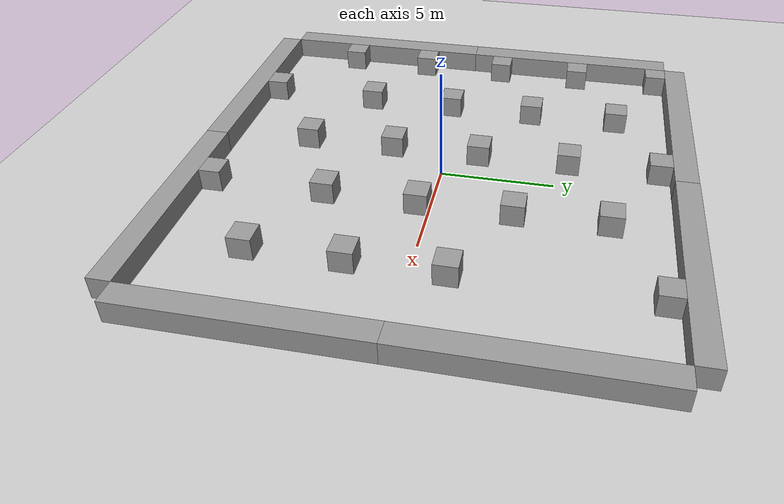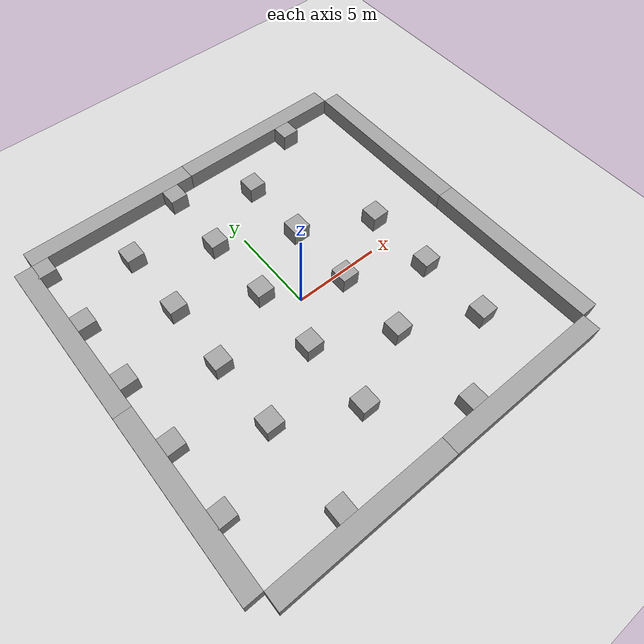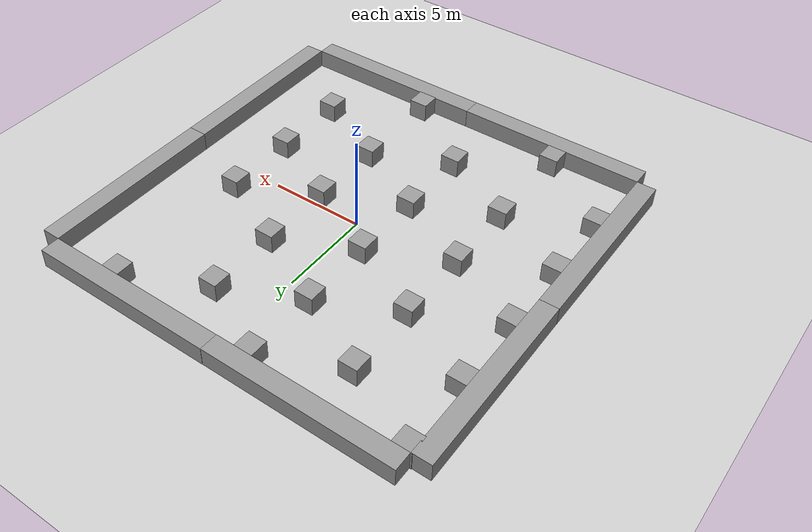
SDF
<sdf version="1.7">
 <world name="default">
  <light name="sun" type="directional">
   <pose>0 0 10 0 -0 0</pose>
   <diffuse>0.8 0.8 0.8 1</diffuse>
   <specular>0.2 0.2 0.2 1</specular>
   <attenuation>
    <range>1000</range>
    <constant>0.9</constant>
    <linear>0.01</linear>
    <quadratic>0.001</quadratic>
   </attenuation>
   <direction>-0.5 0.1 -0.9</direction>
   <spot><inner_angle>0</inner_angle><outer_angle>0</outer_angle><falloff>0</falloff></spot>
  </light>
  <model name="ground_plane">
   <static>1</static>
   <link name="link">
    <collision name="collision">
     <geometry><plane><normal>0 0 1</normal><size>100 100</size></plane></geometry>
     <surface>
      <contact><collide_bitmask>65535</collide_bitmask></contact>
      <friction><ode><mu>100</mu><mu2>50</mu2></ode></friction>
     </surface>
    </collision>
    <visual name="visual">
     <cast_shadows>0</cast_shadows>
     <geometry><plane><normal>0 0 1</normal><size>100 100</size></plane></geometry>
     <material>
      <script><uri>file://media/materials/scripts/gazebo.material</uri><name>Gazebo/Grey</name></script>
     </material>
    </visual>
   </link>
  </model>
  <gravity>0 0 -9.8</gravity>
  <magnetic_field>6e-06 2.3e-05 -4.2e-05</magnetic_field>
  <atmosphere type="adiabatic"/>
  <physics type="ode">
   <max_step_size>0.001</max_step_size>
   <real_time_factor>1</real_time_factor>
   <real_time_update_rate>1000</real_time_update_rate>
  </physics>
  <scene><ambient>0.4 0.4 0.4 1</ambient><background>0.7 0.7 0.7 1</background><shadows>1</shadows></scene>
  <spherical_coordinates>
   <surface_model>EARTH_WGS84</surface_model>
   <latitude_deg>0</latitude_deg>
   <longitude_deg>0</longitude_deg>
   <elevation>0</elevation>
   <heading_deg>0</heading_deg>
  </spherical_coordinates>
  <model name="wall">
   <link name="link">
    <inertial>
     <mass>1</mass>
     <inertia>
      <ixx>0.166667</ixx>
      <ixy>0</ixy>
      <ixz>0</ixz>
      <iyy>0.166667</iyy>
      <iyz>0</iyz>
      <izz>0.166667</izz>
     </inertia>
    </inertial>
    <kinematic>1</kinematic>
    <gravity>0</gravity>
    <visual name="visual">
     <geometry><box><size>1 10 1</size></box></geometry>
     <material>
      <script><name>Gazebo/Grey</name><uri>file://media/materials/scripts/gazebo.material</uri></script>
      <shader type="pixel"><normal_map>__default__</normal_map></shader>
      <ambient>0.3 0.3 0.3 1</ambient>
      <diffuse>0.7 0.7 0.7 1</diffuse>
      <specular>0.01 0.01 0.01 1</specular>
      <emissive>0 0 0 1</emissive>
     </material>
    </visual>
    <collision name="collision">
     <geometry><box><size>1 10 1</size></box></geometry>
     <surface>
      <friction>
       <ode><mu>1</mu><mu2>1</mu2><fdir1>0 0 0</fdir1><slip1>0</slip1><slip2>0</slip2></ode>
       <torsional>
        <coefficient>1</coefficient>
        <patch_radius>0</patch_radius>
        <surface_radius>0</surface_radius>
        <use_patch_radius>1</use_patch_radius>
        <ode><slip>0</slip></ode>
       </torsional>
      </friction>
      <bounce><restitution_coefficient>0</restitution_coefficient><threshold>1e+06</threshold></bounce>
      <contact>
       <collide_without_contact>0</collide_without_contact>
       <collide_without_contact_bitmask>1</collide_without_contact_bitmask>
       <collide_bitmask>1</collide_bitmask>
       <ode>
        <soft_cfm>0</soft_cfm>
        <soft_erp>0.2</soft_erp>
        <kp>1e+13</kp>
        <kd>1</kd>
        <max_vel>0.01</max_vel>
        <min_depth>0</min_depth>
       </ode>
       <bullet>
        <split_impulse>1</split_impulse>
        <split_impulse_penetration_threshold>-0.01</split_impulse_penetration_threshold>
        <soft_cfm>0</soft_cfm>
        <soft_erp>0.2</soft_erp>
        <kp>1e+13</kp>
        <kd>1</kd>
       </bullet>
      </contact>
     </surface>
    </collision>
   </link>
   <static>0</static>
   <pose>-10.5 5 0.5 0 -0 0</pose>
  </model>
  <model name="wall_clone">
   <link name="link">
    <inertial>
     <mass>1</mass>
     <inertia>
      <ixx>0.166667</ixx>
      <ixy>0</ixy>
      <ixz>0</ixz>
      <iyy>0.166667</iyy>
      <iyz>0</iyz>
      <izz>0.166667</izz>
     </inertia>
    </inertial>
    <kinematic>1</kinematic>
    <gravity>0</gravity>
    <visual name="visual">
     <geometry><box><size>1 10 1</size></box></geometry>
     <material>
      <script><name>Gazebo/Grey</name><uri>file://media/materials/scripts/gazebo.material</uri></script>
      <shader type="pixel"><normal_map>__default__</normal_map></shader>
      <ambient>0.3 0.3 0.3 1</ambient>
      <diffuse>0.7 0.7 0.7 1</diffuse>
      <specular>0.01 0.01 0.01 1</specular>
      <emissive>0 0 0 1</emissive>
     </material>
    </visual>
    <collision name="collision">
     <geometry><box><size>1 10 1</size></box></geometry>
     <surface>
      <friction>
       <ode><mu>1</mu><mu2>1</mu2><fdir1>0 0 0</fdir1><slip1>0</slip1><slip2>0</slip2></ode>
       <torsional>
        <coefficient>1</coefficient>
        <patch_radius>0</patch_radius>
        <surface_radius>0</surface_radius>
        <use_patch_radius>1</use_patch_radius>
        <ode><slip>0</slip></ode>
       </torsional>
      </friction>
      <bounce><restitution_coefficient>0</restitution_coefficient><threshold>1e+06</threshold></bounce>
      <contact>
       <collide_without_contact>0</collide_without_contact>
       <collide_without_contact_bitmask>1</collide_without_contact_bitmask>
       <collide_bitmask>1</collide_bitmask>
       <ode>
        <soft_cfm>0</soft_cfm>
        <soft_erp>0.2</soft_erp>
        <kp>1e+13</kp>
        <kd>1</kd>
        <max_vel>0.01</max_vel>
        <min_depth>0</min_depth>
       </ode>
       <bullet>
        <split_impulse>1</split_impulse>
        <split_impulse_penetration_threshold>-0.01</split_impulse_penetration_threshold>
        <soft_cfm>0</soft_cfm>
        <soft_erp>0.2</soft_erp>
        <kp>1e+13</kp>
        <kd>1</kd>
       </bullet>
      </contact>
     </surface>
    </collision>
   </link>
   <static>0</static>
   <pose>-10.5 -5 0.5 0 -0 0</pose>
  </model>
  <model name="wall_clone_0">
   <link name="link">
    <inertial>
     <mass>1</mass>
     <inertia>
      <ixx>0.166667</ixx>
      <ixy>0</ixy>
      <ixz>0</ixz>
      <iyy>0.166667</iyy>
      <iyz>0</iyz>
      <izz>0.166667</izz>
     </inertia>
    </inertial>
    <kinematic>1</kinematic>
    <gravity>0</gravity>
    <visual name="visual">
     <geometry><box><size>1 10 1</size></box></geometry>
     <material>
      <script><name>Gazebo/Grey</name><uri>file://media/materials/scripts/gazebo.material</uri></script>
      <shader type="pixel"><normal_map>__default__</normal_map></shader>
      <ambient>0.3 0.3 0.3 1</ambient>
      <diffuse>0.7 0.7 0.7 1</diffuse>
      <specular>0.01 0.01 0.01 1</specular>
      <emissive>0 0 0 1</emissive>
     </material>
    </visual>
    <collision name="collision">
     <geometry><box><size>1 10 1</size></box></geometry>
     <surface>
      <friction>
       <ode><mu>1</mu><mu2>1</mu2><fdir1>0 0 0</fdir1><slip1>0</slip1><slip2>0</slip2></ode>
       <torsional>
        <coefficient>1</coefficient>
        <patch_radius>0</patch_radius>
        <surface_radius>0</surface_radius>
        <use_patch_radius>1</use_patch_radius>
        <ode><slip>0</slip></ode>
       </torsional>
      </friction>
      <bounce><restitution_coefficient>0</restitution_coefficient><threshold>1e+06</threshold></bounce>
      <contact>
       <collide_without_contact>0</collide_without_contact>
       <collide_without_contact_bitmask>1</collide_without_contact_bitmask>
       <collide_bitmask>1</collide_bitmask>
       <ode>
        <soft_cfm>0</soft_cfm>
        <soft_erp>0.2</soft_erp>
        <kp>1e+13</kp>
        <kd>1</kd>
        <max_vel>0.01</max_vel>
        <min_depth>0</min_depth>
       </ode>
       <bullet>
        <split_impulse>1</split_impulse>
        <split_impulse_penetration_threshold>-0.01</split_impulse_penetration_threshold>
        <soft_cfm>0</soft_cfm>
        <soft_erp>0.2</soft_erp>
        <kp>1e+13</kp>
        <kd>1</kd>
       </bullet>
      </contact>
     </surface>
    </collision>
   </link>
   <static>0</static>
   <pose>10.5 5 0.5 0 -0 0</pose>
  </model>
  <model name="wall_clone_0_clone">
   <link name="link">
    <inertial>
     <mass>1</mass>
     <inertia>
      <ixx>0.166667</ixx>
      <ixy>0</ixy>
      <ixz>0</ixz>
      <iyy>0.166667</iyy>
      <iyz>0</iyz>
      <izz>0.166667</izz>
     </inertia>
    </inertial>
    <kinematic>1</kinematic>
    <gravity>0</gravity>
    <visual name="visual">
     <geometry><box><size>1 10 1</size></box></geometry>
     <material>
      <script><name>Gazebo/Grey</name><uri>file://media/materials/scripts/gazebo.material</uri></script>
      <shader type="pixel"><normal_map>__default__</normal_map></shader>
      <ambient>0.3 0.3 0.3 1</ambient>
      <diffuse>0.7 0.7 0.7 1</diffuse>
      <specular>0.01 0.01 0.01 1</specular>
      <emissive>0 0 0 1</emissive>
     </material>
    </visual>
    <collision name="collision">
     <geometry><box><size>1 10 1</size></box></geometry>
     <surface>
      <friction>
       <ode><mu>1</mu><mu2>1</mu2><fdir1>0 0 0</fdir1><slip1>0</slip1><slip2>0</slip2></ode>
       <torsional>
        <coefficient>1</coefficient>
        <patch_radius>0</patch_radius>
        <surface_radius>0</surface_radius>
        <use_patch_radius>1</use_patch_radius>
        <ode><slip>0</slip></ode>
       </torsional>
      </friction>
      <bounce><restitution_coefficient>0</restitution_coefficient><threshold>1e+06</threshold></bounce>
      <contact>
       <collide_without_contact>0</collide_without_contact>
       <collide_without_contact_bitmask>1</collide_without_contact_bitmask>
       <collide_bitmask>1</collide_bitmask>
       <ode>
        <soft_cfm>0</soft_cfm>
        <soft_erp>0.2</soft_erp>
        <kp>1e+13</kp>
        <kd>1</kd>
        <max_vel>0.01</max_vel>
        <min_depth>0</min_depth>
       </ode>
       <bullet>
        <split_impulse>1</split_impulse>
        <split_impulse_penetration_threshold>-0.01</split_impulse_penetration_threshold>
        <soft_cfm>0</soft_cfm>
        <soft_erp>0.2</soft_erp>
        <kp>1e+13</kp>
        <kd>1</kd>
       </bullet>
      </contact>
     </surface>
    </collision>
   </link>
   <static>0</static>
   <pose>10.5 -5 0.5 0 -0 0</pose>
  </model>
  <model name="wall_clone_1">
   <link name="link">
    <inertial>
     <mass>1</mass>
     <inertia>
      <ixx>0.166667</ixx>
      <ixy>0</ixy>
      <ixz>0</ixz>
      <iyy>0.166667</iyy>
      <iyz>0</iyz>
      <izz>0.166667</izz>
     </inertia>
    </inertial>
    <kinematic>1</kinematic>
    <gravity>0</gravity>
    <visual name="visual">
     <geometry><box><size>1 10 1</size></box></geometry>
     <material>
      <script><name>Gazebo/Grey</name><uri>file://media/materials/scripts/gazebo.material</uri></script>
      <shader type="pixel"><normal_map>__default__</normal_map></shader>
      <ambient>0.3 0.3 0.3 1</ambient>
      <diffuse>0.7 0.7 0.7 1</diffuse>
      <specular>0.01 0.01 0.01 1</specular>
      <emissive>0 0 0 1</emissive>
     </material>
    </visual>
    <collision name="collision">
     <geometry><box><size>1 10 1</size></box></geometry>
     <surface>
      <friction>
       <ode><mu>1</mu><mu2>1</mu2><fdir1>0 0 0</fdir1><slip1>0</slip1><slip2>0</slip2></ode>
       <torsional>
        <coefficient>1</coefficient>
        <patch_radius>0</patch_radius>
        <surface_radius>0</surface_radius>
        <use_patch_radius>1</use_patch_radius>
        <ode><slip>0</slip></ode>
       </torsional>
      </friction>
      <bounce><restitution_coefficient>0</restitution_coefficient><threshold>1e+06</threshold></bounce>
      <contact>
       <collide_without_contact>0</collide_without_contact>
       <collide_without_contact_bitmask>1</collide_without_contact_bitmask>
       <collide_bitmask>1</collide_bitmask>
       <ode>
        <soft_cfm>0</soft_cfm>
        <soft_erp>0.2</soft_erp>
        <kp>1e+13</kp>
        <kd>1</kd>
        <max_vel>0.01</max_vel>
        <min_depth>0</min_depth>
       </ode>
       <bullet>
        <split_impulse>1</split_impulse>
        <split_impulse_penetration_threshold>-0.01</split_impulse_penetration_threshold>
        <soft_cfm>0</soft_cfm>
        <soft_erp>0.2</soft_erp>
        <kp>1e+13</kp>
        <kd>1</kd>
       </bullet>
      </contact>
     </surface>
    </collision>
   </link>
   <static>0</static>
   <pose>-5 10.5 0.5 0 -0 1.57</pose>
  </model>
  <model name="wall_clone_1_clone">
   <link name="link">
    <inertial>
     <mass>1</mass>
     <inertia>
      <ixx>0.166667</ixx>
      <ixy>0</ixy>
      <ixz>0</ixz>
      <iyy>0.166667</iyy>
      <iyz>0</iyz>
      <izz>0.166667</izz>
     </inertia>
    </inertial>
    <kinematic>1</kinematic>
    <gravity>0</gravity>
    <visual name="visual">
     <geometry><box><size>1 10 1</size></box></geometry>
     <material>
      <script><name>Gazebo/Grey</name><uri>file://media/materials/scripts/gazebo.material</uri></script>
      <shader type="pixel"><normal_map>__default__</normal_map></shader>
      <ambient>0.3 0.3 0.3 1</ambient>
      <diffuse>0.7 0.7 0.7 1</diffuse>
      <specular>0.01 0.01 0.01 1</specular>
      <emissive>0 0 0 1</emissive>
     </material>
    </visual>
    <collision name="collision">
     <geometry><box><size>1 10 1</size></box></geometry>
     <surface>
      <friction>
       <ode><mu>1</mu><mu2>1</mu2><fdir1>0 0 0</fdir1><slip1>0</slip1><slip2>0</slip2></ode>
       <torsional>
        <coefficient>1</coefficient>
        <patch_radius>0</patch_radius>
        <surface_radius>0</surface_radius>
        <use_patch_radius>1</use_patch_radius>
        <ode><slip>0</slip></ode>
       </torsional>
      </friction>
      <bounce><restitution_coefficient>0</restitution_coefficient><threshold>1e+06</threshold></bounce>
      <contact>
       <collide_without_contact>0</collide_without_contact>
       <collide_without_contact_bitmask>1</collide_without_contact_bitmask>
       <collide_bitmask>1</collide_bitmask>
       <ode>
        <soft_cfm>0</soft_cfm>
        <soft_erp>0.2</soft_erp>
        <kp>1e+13</kp>
        <kd>1</kd>
        <max_vel>0.01</max_vel>
        <min_depth>0</min_depth>
       </ode>
       <bullet>
        <split_impulse>1</split_impulse>
        <split_impulse_penetration_threshold>-0.01</split_impulse_penetration_threshold>
        <soft_cfm>0</soft_cfm>
        <soft_erp>0.2</soft_erp>
        <kp>1e+13</kp>
        <kd>1</kd>
       </bullet>
      </contact>
     </surface>
    </collision>
   </link>
   <static>0</static>
   <pose>5 10.5 0.5 0 -0 1.57</pose>
  </model>
  <model name="wall_clone_1_clone_0">
   <link name="link">
    <inertial>
     <mass>1</mass>
     <inertia>
      <ixx>0.166667</ixx>
      <ixy>0</ixy>
      <ixz>0</ixz>
      <iyy>0.166667</iyy>
      <iyz>0</iyz>
      <izz>0.166667</izz>
     </inertia>
    </inertial>
    <kinematic>1</kinematic>
    <gravity>0</gravity>
    <visual name="visual">
     <geometry><box><size>1 10 1</size></box></geometry>
     <material>
      <script><name>Gazebo/Grey</name><uri>file://media/materials/scripts/gazebo.material</uri></script>
      <shader type="pixel"><normal_map>__default__</normal_map></shader>
      <ambient>0.3 0.3 0.3 1</ambient>
      <diffuse>0.7 0.7 0.7 1</diffuse>
      <specular>0.01 0.01 0.01 1</specular>
      <emissive>0 0 0 1</emissive>
     </material>
    </visual>
    <collision name="collision">
     <geometry><box><size>1 10 1</size></box></geometry>
     <surface>
      <friction>
       <ode><mu>1</mu><mu2>1</mu2><fdir1>0 0 0</fdir1><slip1>0</slip1><slip2>0</slip2></ode>
       <torsional>
        <coefficient>1</coefficient>
        <patch_radius>0</patch_radius>
        <surface_radius>0</surface_radius>
        <use_patch_radius>1</use_patch_radius>
        <ode><slip>0</slip></ode>
       </torsional>
      </friction>
      <bounce><restitution_coefficient>0</restitution_coefficient><threshold>1e+06</threshold></bounce>
      <contact>
       <collide_without_contact>0</collide_without_contact>
       <collide_without_contact_bitmask>1</collide_without_contact_bitmask>
       <collide_bitmask>1</collide_bitmask>
       <ode>
        <soft_cfm>0</soft_cfm>
        <soft_erp>0.2</soft_erp>
        <kp>1e+13</kp>
        <kd>1</kd>
        <max_vel>0.01</max_vel>
        <min_depth>0</min_depth>
       </ode>
       <bullet>
        <split_impulse>1</split_impulse>
        <split_impulse_penetration_threshold>-0.01</split_impulse_penetration_threshold>
        <soft_cfm>0</soft_cfm>
        <soft_erp>0.2</soft_erp>
        <kp>1e+13</kp>
        <kd>1</kd>
       </bullet>
      </contact>
     </surface>
    </collision>
   </link>
   <static>0</static>
   <pose>-5 -10.5 0.5 0 -0 1.57</pose>
  </model>
  <model name="wall_clone_1_clone_0_clone">
   <link name="link">
    <inertial>
     <mass>1</mass>
     <inertia>
      <ixx>0.166667</ixx>
      <ixy>0</ixy>
      <ixz>0</ixz>
      <iyy>0.166667</iyy>
      <iyz>0</iyz>
      <izz>0.166667</izz>
     </inertia>
    </inertial>
    <kinematic>1</kinematic>
    <gravity>0</gravity>
    <visual name="visual">
     <geometry><box><size>1 10 1</size></box></geometry>
     <material>
      <script><name>Gazebo/Grey</name><uri>file://media/materials/scripts/gazebo.material</uri></script>
      <shader type="pixel"><normal_map>__default__</normal_map></shader>
      <ambient>0.3 0.3 0.3 1</ambient>
      <diffuse>0.7 0.7 0.7 1</diffuse>
      <specular>0.01 0.01 0.01 1</specular>
      <emissive>0 0 0 1</emissive>
     </material>
    </visual>
    <collision name="collision">
     <geometry><box><size>1 10 1</size></box></geometry>
     <surface>
      <friction>
       <ode><mu>1</mu><mu2>1</mu2><fdir1>0 0 0</fdir1><slip1>0</slip1><slip2>0</slip2></ode>
       <torsional>
        <coefficient>1</coefficient>
        <patch_radius>0</patch_radius>
        <surface_radius>0</surface_radius>
        <use_patch_radius>1</use_patch_radius>
        <ode><slip>0</slip></ode>
       </torsional>
      </friction>
      <bounce><restitution_coefficient>0</restitution_coefficient><threshold>1e+06</threshold></bounce>
      <contact>
       <collide_without_contact>0</collide_without_contact>
       <collide_without_contact_bitmask>1</collide_without_contact_bitmask>
       <collide_bitmask>1</collide_bitmask>
       <ode>
        <soft_cfm>0</soft_cfm>
        <soft_erp>0.2</soft_erp>
        <kp>1e+13</kp>
        <kd>1</kd>
        <max_vel>0.01</max_vel>
        <min_depth>0</min_depth>
       </ode>
       <bullet>
        <split_impulse>1</split_impulse>
        <split_impulse_penetration_threshold>-0.01</split_impulse_penetration_threshold>
        <soft_cfm>0</soft_cfm>
        <soft_erp>0.2</soft_erp>
        <kp>1e+13</kp>
        <kd>1</kd>
       </bullet>
      </contact>
     </surface>
    </collision>
   </link>
   <static>0</static>
   <pose>5 -10.5 0.5 0 -0 1.57</pose>
  </model>
  <model name="unit_box_0_clone_clone_clone_1_clone_0_clone_clone_clone_clone_clone_clone_clone_clone_clone_clone_clone_clone_clone_clone_0_clone_clone_clone_clone_clone_clone_clone_clone_clone_3">
   <pose>6.49434 -6.52352 0.499995 -1e-05 0 0</pose>
   <link name="link">
    <inertial>
     <mass>1</mass>
     <inertia>
      <ixx>0.166667</ixx>
      <ixy>0</ixy>
      <ixz>0</ixz>
      <iyy>0.166667</iyy>
      <iyz>0</iyz>
      <izz>0.166667</izz>
     </inertia>
    </inertial>
    <collision name="collision"><geometry><box><size>1 1 1</size></box></geometry></collision>
    <visual name="visual">
     <geometry><box><size>1 1 1</size></box></geometry>
     <material>
      <script><name>Gazebo/Grey</name><uri>file://media/materials/scripts/gazebo.material</uri></script>
     </material>
    </visual>
    <kinematic>1</kinematic>
   </link>
  </model>
  <model name="unit_box_0_clone_clone_clone_1_clone_0_clone_clone_clone_clone_clone_clone_clone_clone_clone_clone_clone_clone_clone_clone_0_clone_clone_clone_clone_clone_clone_clone_clone_clone_0">
   <pose>6.50327 -2.50363 0.499995 -1e-05 0 0</pose>
   <link name="link">
    <inertial>
     <mass>1</mass>
     <inertia>
      <ixx>0.166667</ixx>
      <ixy>0</ixy>
      <ixz>0</ixz>
      <iyy>0.166667</iyy>
      <iyz>0</iyz>
      <izz>0.166667</izz>
     </inertia>
    </inertial>
    <collision name="collision"><geometry><box><size>1 1 1</size></box></geometry></collision>
    <visual name="visual">
     <geometry><box><size>1 1 1</size></box></geometry>
     <material>
      <script><name>Gazebo/Grey</name><uri>file://media/materials/scripts/gazebo.material</uri></script>
     </material>
    </visual>
    <kinematic>1</kinematic>
   </link>
  </model>
  <model name="unit_box_0_clone_clone_clone_1_clone_0_clone_clone_clone_clone_clone_clone_clone_clone_clone_clone_clone_clone_clone_clone_0_clone_clone_clone_clone_clone_clone_clone_clone_clone_1">
   <pose>6.49258 1.49115 0.499995 -1e-05 0 0</pose>
   <link name="link">
    <inertial>
     <mass>1</mass>
     <inertia>
      <ixx>0.166667</ixx>
      <ixy>0</ixy>
      <ixz>0</ixz>
      <iyy>0.166667</iyy>
      <iyz>0</iyz>
      <izz>0.166667</izz>
     </inertia>
    </inertial>
    <collision name="collision"><geometry><box><size>1 1 1</size></box></geometry></collision>
    <visual name="visual">
     <geometry><box><size>1 1 1</size></box></geometry>
     <material>
      <script><name>Gazebo/Grey</name><uri>file://media/materials/scripts/gazebo.material</uri></script>
     </material>
    </visual>
    <kinematic>1</kinematic>
   </link>
  </model>
  <model name="unit_box_0_clone_clone_clone_1_clone_0_clone_clone_clone_clone_clone_clone_clone_clone_clone_clone_clone_clone_clone_clone_0_clone_clone_clone_clone_clone_clone_clone_clone_clone_2">
   <pose>2.54254 -0.511504 0.499995 -1e-05 0 0</pose>
   <link name="link">
    <inertial>
     <mass>1</mass>
     <inertia>
      <ixx>0.166667</ixx>
      <ixy>0</ixy>
      <ixz>0</ixz>
      <iyy>0.166667</iyy>
      <iyz>0</iyz>
      <izz>0.166667</izz>
     </inertia>
    </inertial>
    <collision name="collision"><geometry><box><size>1 1 1</size></box></geometry></collision>
    <visual name="visual">
     <geometry><box><size>1 1 1</size></box></geometry>
     <material>
      <script><name>Gazebo/Grey</name><uri>file://media/materials/scripts/gazebo.material</uri></script>
     </material>
    </visual>
    <kinematic>1</kinematic>
   </link>
  </model>
  <model name="unit_box_0_clone_clone_clone_1_clone_0_clone_clone_clone_clone_clone_clone_clone_clone_clone_clone_clone_clone_clone_clone_0_clone_clone_clone_clone_clone_clone_clone_clone_clone_4">
   <pose>2.50486 -4.54791 0.499995 -1e-05 0 0</pose>
   <link name="link">
    <inertial>
     <mass>1</mass>
     <inertia>
      <ixx>0.166667</ixx>
      <ixy>0</ixy>
      <ixz>0</ixz>
      <iyy>0.166667</iyy>
      <iyz>0</iyz>
      <izz>0.166667</izz>
     </inertia>
    </inertial>
    <collision name="collision"><geometry><box><size>1 1 1</size></box></geometry></collision>
    <visual name="visual">
     <geometry><box><size>1 1 1</size></box></geometry>
     <material>
      <script><name>Gazebo/Grey</name><uri>file://media/materials/scripts/gazebo.material</uri></script>
     </material>
    </visual>
    <kinematic>1</kinematic>
   </link>
  </model>
  <model name="unit_box_0_clone_clone_clone_1_clone_0_clone_clone_clone_clone_clone_clone_clone_clone_clone_clone_clone_clone_clone_clone_0_clone_clone_clone_clone_clone_clone_clone_clone_clone_2_clone">
   <pose>2.52693 3.49886 0.499995 -1e-05 0 0</pose>
   <link name="link">
    <inertial>
     <mass>1</mass>
     <inertia>
      <ixx>0.166667</ixx>
      <ixy>0</ixy>
      <ixz>0</ixz>
      <iyy>0.166667</iyy>
      <iyz>0</iyz>
      <izz>0.166667</izz>
     </inertia>
    </inertial>
    <collision name="collision"><geometry><box><size>1 1 1</size></box></geometry></collision>
    <visual name="visual">
     <geometry><box><size>1 1 1</size></box></geometry>
     <material>
      <script><name>Gazebo/Grey</name><uri>file://media/materials/scripts/gazebo.material</uri></script>
     </material>
    </visual>
    <kinematic>1</kinematic>
   </link>
  </model>
  <model name="unit_box_0_clone_clone_clone_1_clone_0_clone_clone_clone_clone_clone_clone_clone_clone_clone_clone_clone_clone_clone_clone_0_clone_clone_clone_clone_clone_clone_clone_clone_clone_2_clone_0">
   <pose>2.47619 7.44873 0.499995 -1e-05 0 0</pose>
   <link name="link">
    <inertial>
     <mass>1</mass>
     <inertia>
      <ixx>0.166667</ixx>
      <ixy>0</ixy>
      <ixz>0</ixz>
      <iyy>0.166667</iyy>
      <iyz>0</iyz>
      <izz>0.166667</izz>
     </inertia>
    </inertial>
    <collision name="collision"><geometry><box><size>1 1 1</size></box></geometry></collision>
    <visual name="visual">
     <geometry><box><size>1 1 1</size></box></geometry>
     <material>
      <script><name>Gazebo/Grey</name><uri>file://media/materials/scripts/gazebo.material</uri></script>
     </material>
    </visual>
    <kinematic>1</kinematic>
   </link>
  </model>
  <model name="unit_box_0_clone_clone_clone_1_clone_0_clone_clone_clone_clone_clone_clone_clone_clone_clone_clone_clone_clone_clone_clone_0_clone_clone_clone_clone_clone_clone_clone_clone_clone_2_clone_1">
   <pose>-1.46932 -6.49246 0.499995 -1e-05 0 0</pose>
   <link name="link">
    <inertial>
     <mass>1</mass>
     <inertia>
      <ixx>0.166667</ixx>
      <ixy>0</ixy>
      <ixz>0</ixz>
      <iyy>0.166667</iyy>
      <iyz>0</iyz>
      <izz>0.166667</izz>
     </inertia>
    </inertial>
    <collision name="collision"><geometry><box><size>1 1 1</size></box></geometry></collision>
    <visual name="visual">
     <geometry><box><size>1 1 1</size></box></geometry>
     <material>
      <script><name>Gazebo/Grey</name><uri>file://media/materials/scripts/gazebo.material</uri></script>
     </material>
    </visual>
    <kinematic>1</kinematic>
   </link>
  </model>
  <model name="unit_box_0_clone_clone_clone_1_clone_0_clone_clone_clone_clone_clone_clone_clone_clone_clone_clone_clone_clone_clone_clone_0_clone_clone_clone_clone_clone_clone_clone_clone_clone_2_clone_2">
   <pose>-1.47434 -2.48188 0.499995 -1e-05 0 0</pose>
   <link name="link">
    <inertial>
     <mass>1</mass>
     <inertia>
      <ixx>0.166667</ixx>
      <ixy>0</ixy>
      <ixz>0</ixz>
      <iyy>0.166667</iyy>
      <iyz>0</iyz>
      <izz>0.166667</izz>
     </inertia>
    </inertial>
    <collision name="collision"><geometry><box><size>1 1 1</size></box></geometry></collision>
    <visual name="visual">
     <geometry><box><size>1 1 1</size></box></geometry>
     <material>
      <script><name>Gazebo/Grey</name><uri>file://media/materials/scripts/gazebo.material</uri></script>
     </material>
    </visual>
    <kinematic>1</kinematic>
   </link>
  </model>
  <model name="unit_box_0_clone_clone_clone_1_clone_0_clone_clone_clone_clone_clone_clone_clone_clone_clone_clone_clone_clone_clone_clone_0_clone_clone_clone_clone_clone_clone_clone_clone_clone_2_clone_3">
   <pose>-1.46097 1.4942 0.499995 -1e-05 0 0</pose>
   <link name="link">
    <inertial>
     <mass>1</mass>
     <inertia>
      <ixx>0.166667</ixx>
      <ixy>0</ixy>
      <ixz>0</ixz>
      <iyy>0.166667</iyy>
      <iyz>0</iyz>
      <izz>0.166667</izz>
     </inertia>
    </inertial>
    <collision name="collision"><geometry><box><size>1 1 1</size></box></geometry></collision>
    <visual name="visual">
     <geometry><box><size>1 1 1</size></box></geometry>
     <material>
      <script><name>Gazebo/Grey</name><uri>file://media/materials/scripts/gazebo.material</uri></script>
     </material>
    </visual>
    <kinematic>1</kinematic>
   </link>
  </model>
  <model name="unit_box_0_clone_clone_clone_1_clone_0_clone_clone_clone_clone_clone_clone_clone_clone_clone_clone_clone_clone_clone_clone_0_clone_clone_clone_clone_clone_clone_clone_clone_clone_2_clone_4">
   <pose>-1.50712 5.52215 0.499995 -1e-05 0 0</pose>
   <link name="link">
    <inertial>
     <mass>1</mass>
     <inertia>
      <ixx>0.166667</ixx>
      <ixy>0</ixy>
      <ixz>0</ixz>
      <iyy>0.166667</iyy>
      <iyz>0</iyz>
      <izz>0.166667</izz>
     </inertia>
    </inertial>
    <collision name="collision"><geometry><box><size>1 1 1</size></box></geometry></collision>
    <visual name="visual">
     <geometry><box><size>1 1 1</size></box></geometry>
     <material>
      <script><name>Gazebo/Grey</name><uri>file://media/materials/scripts/gazebo.material</uri></script>
     </material>
    </visual>
    <kinematic>1</kinematic>
   </link>
  </model>
  <model name="unit_box_0_clone_clone_clone_1_clone_0_clone_clone_clone_clone_clone_clone_clone_clone_clone_clone_clone_clone_clone_clone_0_clone_clone_clone_clone_clone_clone_clone_clone_clone_2_clone_5">
   <pose>-5.48544 7.54293 0.499995 -1e-05 0 0</pose>
   <link name="link">
    <inertial>
     <mass>1</mass>
     <inertia>
      <ixx>0.166667</ixx>
      <ixy>0</ixy>
      <ixz>0</ixz>
      <iyy>0.166667</iyy>
      <iyz>0</iyz>
      <izz>0.166667</izz>
     </inertia>
    </inertial>
    <collision name="collision"><geometry><box><size>1 1 1</size></box></geometry></collision>
    <visual name="visual">
     <geometry><box><size>1 1 1</size></box></geometry>
     <material>
      <script><name>Gazebo/Grey</name><uri>file://media/materials/scripts/gazebo.material</uri></script>
     </material>
    </visual>
    <kinematic>1</kinematic>
   </link>
  </model>
  <model name="unit_box_0_clone_clone_clone_1_clone_0_clone_clone_clone_clone_clone_clone_clone_clone_clone_clone_clone_clone_clone_clone_0_clone_clone_clone_clone_clone_clone_clone_clone_clone_2_clone_6">
   <pose>-5.46074 3.48599 0.499995 -1e-05 0 0</pose>
   <link name="link">
    <inertial>
     <mass>1</mass>
     <inertia>
      <ixx>0.166667</ixx>
      <ixy>0</ixy>
      <ixz>0</ixz>
      <iyy>0.166667</iyy>
      <iyz>0</iyz>
      <izz>0.166667</izz>
     </inertia>
    </inertial>
    <collision name="collision"><geometry><box><size>1 1 1</size></box></geometry></collision>
    <visual name="visual">
     <geometry><box><size>1 1 1</size></box></geometry>
     <material>
      <script><name>Gazebo/Grey</name><uri>file://media/materials/scripts/gazebo.material</uri></script>
     </material>
    </visual>
    <kinematic>1</kinematic>
   </link>
  </model>
  <model name="unit_box_0_clone_clone_clone_1_clone_0_clone_clone_clone_clone_clone_clone_clone_clone_clone_clone_clone_clone_clone_clone_0_clone_clone_clone_clone_clone_clone_clone_clone_clone_2_clone_7">
   <pose>-5.49831 -0.469178 0.499995 -1e-05 0 0</pose>
   <link name="link">
    <inertial>
     <mass>1</mass>
     <inertia>
      <ixx>0.166667</ixx>
      <ixy>0</ixy>
      <ixz>0</ixz>
      <iyy>0.166667</iyy>
      <iyz>0</iyz>
      <izz>0.166667</izz>
     </inertia>
    </inertial>
    <collision name="collision"><geometry><box><size>1 1 1</size></box></geometry></collision>
    <visual name="visual">
     <geometry><box><size>1 1 1</size></box></geometry>
     <material>
      <script><name>Gazebo/Grey</name><uri>file://media/materials/scripts/gazebo.material</uri></script>
     </material>
    </visual>
    <kinematic>1</kinematic>
   </link>
  </model>
  <model name="unit_box_0_clone_clone_clone_1_clone_0_clone_clone_clone_clone_clone_clone_clone_clone_clone_clone_clone_clone_clone_clone_0_clone_clone_clone_clone_clone_clone_clone_clone_clone_2_clone_8">
   <pose>-5.47773 -4.4814 0.499995 -1e-05 0 0</pose>
   <link name="link">
    <inertial>
     <mass>1</mass>
     <inertia>
      <ixx>0.166667</ixx>
      <ixy>0</ixy>
      <ixz>0</ixz>
      <iyy>0.166667</iyy>
      <iyz>0</iyz>
      <izz>0.166667</izz>
     </inertia>
    </inertial>
    <collision name="collision"><geometry><box><size>1 1 1</size></box></geometry></collision>
    <visual name="visual">
     <geometry><box><size>1 1 1</size></box></geometry>
     <material>
      <script><name>Gazebo/Grey</name><uri>file://media/materials/scripts/gazebo.material</uri></script>
     </material>
    </visual>
    <kinematic>1</kinematic>
   </link>
  </model>
  <model name="unit_box_0_clone_clone_clone_1_clone_0_clone_clone_clone_clone_clone_clone_clone_clone_clone_clone_clone_clone_clone_clone_0_clone_clone_clone_clone_clone_clone_clone_clone_clone_2_clone_9">
   <pose>2.53961 -9.55329 0.499995 -1e-05 0 0</pose>
   <link name="link">
    <inertial>
     <mass>1</mass>
     <inertia>
      <ixx>0.166667</ixx>
      <ixy>0</ixy>
      <ixz>0</ixz>
      <iyy>0.166667</iyy>
      <iyz>0</iyz>
      <izz>0.166667</izz>
     </inertia>
    </inertial>
    <collision name="collision"><geometry><box><size>1 1 1</size></box></geometry></collision>
    <visual name="visual">
     <geometry><box><size>1 1 1</size></box></geometry>
     <material>
      <script><name>Gazebo/Grey</name><uri>file://media/materials/scripts/gazebo.material</uri></script>
     </material>
    </visual>
    <kinematic>1</kinematic>
   </link>
  </model>
  <model name="unit_box_0_clone_clone_clone_1_clone_0_clone_clone_clone_clone_clone_clone_clone_clone_clone_clone_clone_clone_clone_clone_0_clone_clone_clone_clone_clone_clone_clone_clone_clone_2_clone_11">
   <pose>-5.51434 -9.51438 0.499995 -1e-05 0 0</pose>
   <link name="link">
    <inertial>
     <mass>1</mass>
     <inertia>
      <ixx>0.166667</ixx>
      <ixy>0</ixy>
      <ixz>0</ixz>
      <iyy>0.166667</iyy>
      <iyz>0</iyz>
      <izz>0.166667</izz>
     </inertia>
    </inertial>
    <collision name="collision"><geometry><box><size>1 1 1</size></box></geometry></collision>
    <visual name="visual">
     <geometry><box><size>1 1 1</size></box></geometry>
     <material>
      <script><name>Gazebo/Grey</name><uri>file://media/materials/scripts/gazebo.material</uri></script>
     </material>
    </visual>
    <kinematic>1</kinematic>
   </link>
  </model>
  <model name="unit_box_0_clone_clone_clone_1_clone_0_clone_clone_clone_clone_clone_clone_clone_clone_clone_clone_clone_clone_clone_clone_0_clone_clone_clone_clone_clone_clone_clone_clone_clone_2_clone_8_clone">
   <pose>-9.51944 -2.54081 0.499995 -1e-05 0 0</pose>
   <link name="link">
    <inertial>
     <mass>1</mass>
     <inertia>
      <ixx>0.166667</ixx>
      <ixy>0</ixy>
      <ixz>0</ixz>
      <iyy>0.166667</iyy>
      <iyz>0</iyz>
      <izz>0.166667</izz>
     </inertia>
    </inertial>
    <collision name="collision"><geometry><box><size>1 1 1</size></box></geometry></collision>
    <visual name="visual">
     <geometry><box><size>1 1 1</size></box></geometry>
     <material>
      <script><name>Gazebo/Grey</name><uri>file://media/materials/scripts/gazebo.material</uri></script>
     </material>
    </visual>
    <kinematic>1</kinematic>
   </link>
  </model>
  <model name="unit_box_0_clone_clone_clone_1_clone_0_clone_clone_clone_clone_clone_clone_clone_clone_clone_clone_clone_clone_clone_clone_0_clone_clone_clone_clone_clone_clone_clone_clone_clone_2_clone_8_clone_0">
   <pose>-9.53903 1.50898 0.499995 -1e-05 0 0</pose>
   <link name="link">
    <inertial>
     <mass>1</mass>
     <inertia>
      <ixx>0.166667</ixx>
      <ixy>0</ixy>
      <ixz>0</ixz>
      <iyy>0.166667</iyy>
      <iyz>0</iyz>
      <izz>0.166667</izz>
     </inertia>
    </inertial>
    <collision name="collision"><geometry><box><size>1 1 1</size></box></geometry></collision>
    <visual name="visual">
     <geometry><box><size>1 1 1</size></box></geometry>
     <material>
      <script><name>Gazebo/Grey</name><uri>file://media/materials/scripts/gazebo.material</uri></script>
     </material>
    </visual>
    <kinematic>1</kinematic>
   </link>
  </model>
  <model name="unit_box_0_clone_clone_clone_1_clone_0_clone_clone_clone_clone_clone_clone_clone_clone_clone_clone_clone_clone_clone_clone_0_clone_clone_clone_clone_clone_clone_clone_clone_clone_2_clone_8_clone_1">
   <pose>-9.50247 5.50061 0.499995 -1e-05 0 0</pose>
   <link name="link">
    <inertial>
     <mass>1</mass>
     <inertia>
      <ixx>0.166667</ixx>
      <ixy>0</ixy>
      <ixz>0</ixz>
      <iyy>0.166667</iyy>
      <iyz>0</iyz>
      <izz>0.166667</izz>
     </inertia>
    </inertial>
    <collision name="collision"><geometry><box><size>1 1 1</size></box></geometry></collision>
    <visual name="visual">
     <geometry><box><size>1 1 1</size></box></geometry>
     <material>
      <script><name>Gazebo/Grey</name><uri>file://media/materials/scripts/gazebo.material</uri></script>
     </material>
    </visual>
    <kinematic>1</kinematic>
   </link>
  </model>
  <model name="unit_box_0_clone_clone_clone_1_clone_0_clone_clone_clone_clone_clone_clone_clone_clone_clone_clone_clone_clone_clone_clone_0_clone_clone_clone_clone_clone_clone_clone_clone_clone_2_clone_8_clone_4">
   <pose>-9.55281 -6.49095 0.499995 -1e-05 0 0</pose>
   <link name="link">
    <inertial>
     <mass>1</mass>
     <inertia>
      <ixx>0.166667</ixx>
      <ixy>0</ixy>
      <ixz>0</ixz>
      <iyy>0.166667</iyy>
      <iyz>0</iyz>
      <izz>0.166667</izz>
     </inertia>
    </inertial>
    <collision name="collision"><geometry><box><size>1 1 1</size></box></geometry></collision>
    <visual name="visual">
     <geometry><box><size>1 1 1</size></box></geometry>
     <material>
      <script><name>Gazebo/Grey</name><uri>file://media/materials/scripts/gazebo.material</uri></script>
     </material>
    </visual>
    <kinematic>1</kinematic>
   </link>
  </model>
  <model name="unit_box_0_clone_clone_clone_1_clone_0_clone_clone_clone_clone_clone_clone_clone_clone_clone_clone_clone_clone_clone_clone_0_clone_clone_clone_clone_clone_clone_clone_clone_clone_2_clone_8_clone_4_clone">
   <pose>-9.58001 9.53498 0.499995 -1e-05 0 0</pose>
   <link name="link">
    <inertial>
     <mass>1</mass>
     <inertia>
      <ixx>0.166667</ixx>
      <ixy>0</ixy>
      <ixz>0</ixz>
      <iyy>0.166667</iyy>
      <iyz>0</iyz>
      <izz>0.166667</izz>
     </inertia>
    </inertial>
    <collision name="collision"><geometry><box><size>1 1 1</size></box></geometry></collision>
    <visual name="visual">
     <geometry><box><size>1 1 1</size></box></geometry>
     <material>
      <script><name>Gazebo/Grey</name><uri>file://media/materials/scripts/gazebo.material</uri></script>
     </material>
    </visual>
    <kinematic>1</kinematic>
   </link>
  </model>
  <model name="unit_box_0_clone_clone_clone_1_clone_0_clone_clone_clone_clone_clone_clone_clone_clone_clone_clone_clone_clone_clone_clone_0_clone_clone_clone_clone_clone_clone_clone_clone_clone_2_clone_8_clone_4_clone_0">
   <pose>-1.4714 9.51007 0.499995 -1e-05 0 0</pose>
   <link name="link">
    <inertial>
     <mass>1</mass>
     <inertia>
      <ixx>0.166667</ixx>
      <ixy>0</ixy>
      <ixz>0</ixz>
      <iyy>0.166667</iyy>
      <iyz>0</iyz>
      <izz>0.166667</izz>
     </inertia>
    </inertial>
    <collision name="collision"><geometry><box><size>1 1 1</size></box></geometry></collision>
    <visual name="visual">
     <geometry><box><size>1 1 1</size></box></geometry>
     <material>
      <script><name>Gazebo/Grey</name><uri>file://media/materials/scripts/gazebo.material</uri></script>
     </material>
    </visual>
    <kinematic>1</kinematic>
   </link>
  </model>
  <model name="unit_box_0_clone_clone_clone_1_clone_0_clone_clone_clone_clone_clone_clone_clone_clone_clone_clone_clone_clone_clone_clone_0_clone_clone_clone_clone_clone_clone_clone_clone_clone_2_clone_8_clone_4_clone_1">
   <pose>6.53849 9.54318 0.499995 -1e-05 0 0</pose>
   <link name="link">
    <inertial>
     <mass>1</mass>
     <inertia>
      <ixx>0.166667</ixx>
      <ixy>0</ixy>
      <ixz>0</ixz>
      <iyy>0.166667</iyy>
      <iyz>0</iyz>
      <izz>0.166667</izz>
     </inertia>
    </inertial>
    <collision name="collision"><geometry><box><size>1 1 1</size></box></geometry></collision>
    <visual name="visual">
     <geometry><box><size>1 1 1</size></box></geometry>
     <material>
      <script><name>Gazebo/Grey</name><uri>file://media/materials/scripts/gazebo.material</uri></script>
     </material>
    </visual>
    <kinematic>1</kinematic>
   </link>
  </model>
 </world>
</sdf>
